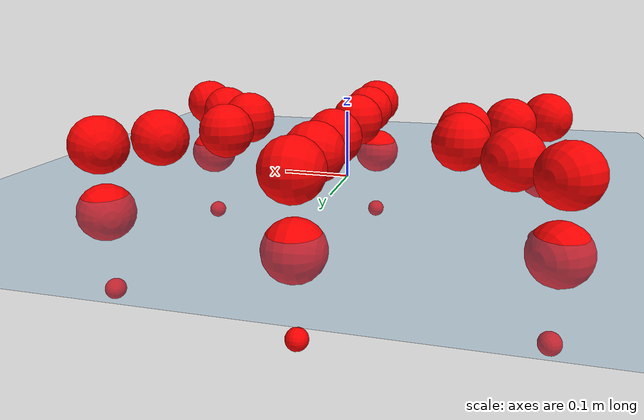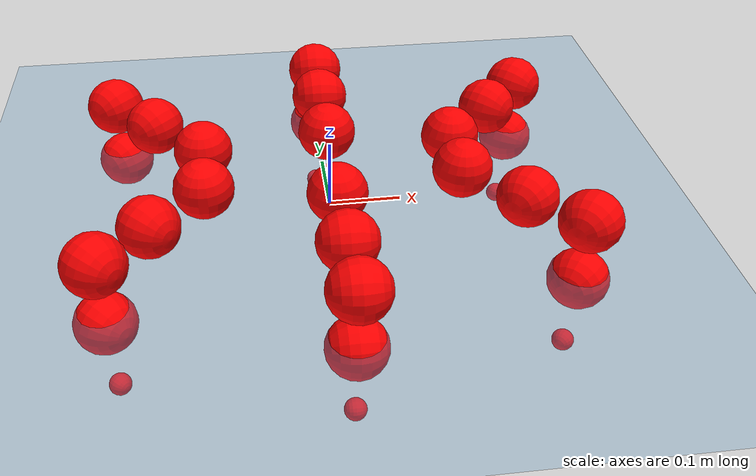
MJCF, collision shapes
<mujoco model="Golem">
  <compiler angle="radian" assetdir="assets" balanceinertia="true" inertiafromgeom="false"/>

  <option timestep="0.005" density="1.2" viscosity="2e-05"/>

  <size nkey="1"/>

  <visual>
    <quality shadowsize="8192"/>
    <map shadowclip="0.5"/>
  </visual>

  <default>
    <default class="/">
      <joint armature="0.01" damping="0.01" frictionloss="0.01"/>
      <geom contype="0" conaffinity="0" group="1" solref="-1000 -80"/>
      <site size="0.01 0.005 0.005" group="5"/>
      <general forcelimited="true" biastype="affine" gainprm="25" biasprm="0 -25 -0.5"/>
      <default class="visual">
        <geom type="mesh" group="2"/>
      </default>
      <default class="collision">
        <geom group="3"/>
      </default>
      <default class="foot">
        <geom size="0.01 0 0" condim="6" group="4" priority="1" solimp="0.015 1 0.01"/>
      </default>
      <default class="reward_collision_sphere">
        <geom group="5" rgba="1 0 0 1"/>
      </default>
    </default>
  </default>

  <asset>
    <texture type="skybox" colorspace="auto" name="//unnamed_texture_0" builtin="gradient" rgb1="0.95 0.95 0.95" rgb2="0.95 0.95 0.95" width="100" height="600"/>
    <texture type="2d" colorspace="auto" name="texplane" builtin="checker" rgb1="0.345 0.575 0.748" rgb2="0.345 0.575 0.748" markrgb="1 1 1" width="512" height="512"/>
    <material name="MatPlane" class="/" texture="texplane" texuniform="true" texrepeat="2 2" specular="0.9"/>
    <mesh name="body" class="/" file="body.stl" scale="0.001 0.001 0.001"/>
    <mesh name="coxa" class="/" file="coxa.stl" scale="0.001 0.001 0.001"/>
    <mesh name="femur" class="/" file="femur.stl" scale="0.001 0.001 0.001"/>
    <mesh name="tibia" class="/" file="tibia.stl" scale="0.001 0.001 0.001"/>
    <mesh name="tarsus" class="/" file="tarsus.stl" scale="0.001 0.001 0.001"/>
  </asset>

  <worldbody>
    <geom name="floor" class="/" size="100 100 0.125" type="plane" group="0" material="MatPlane"/>
    <light name="toplight_shadow" class="/" pos="0 0 5" dir="0.0990148 0.0990148 -0.990148" type="directional" ambient="0.04 0.04 0.04" diffuse="0.55 0.55 0.55" specular="0.12 0.12 0.12"/>
    <light name="toplight_fill" class="/" pos="0 0 5" dir="0.0990148 0.0990148 -0.990148" type="directional" castshadow="false" ambient="0.04 0.04 0.04" diffuse="0.3 0.3 0.3" specular="0.08 0.08 0.08"/>
    <body name="trunk" pos="0.00226301 0.000116343 -0.000223767" quat="1 1.22339e-05 5.11928e-05 -2.53164e-05">
      <inertial pos="-0.000473312 -0.000534704 -0.00234381" quat="1 -0.000317198 0.000377708 0.000148482" mass="3.82541" diaginertia="0.0160704 0.0030392 0.0207916"/>
      <joint name="//unnamed_joint_0" type="free"/>
      <geom name="//unnamed_geom_1" class="/" pos="0 0 0.0741603" quat="1 0 0 0" type="mesh" rgba="0.9 0.9 0.9 1" mesh="body"/>
      <site name="imu" class="/" pos="0.153742 0.00938069 0.110821" size="0.0101877"/>
      <camera name="track" class="/" pos="0 -1.58572 0" quat="0.707107 0.707107 0 0" mode="trackcom"/>
      <camera name="ego_camera" class="/" pos="0.143612 0 0.115876" quat="-0.5 -0.5 0.5 0.5"/>
      <body name="coxa_RR" pos="-0.197819 -0.0655438 0.0733548" quat="0.382663 2.57943e-05 -5.60452e-05 -0.923888">
        <inertial pos="0.00031758 -0.0023508 0.00134278" quat="0.999991 0.000709411 0.00282026 0.00317476" mass="0.20401" diaginertia="0.0162086 0.00308201 0.0204725"/>
        <joint name="coxa_joint_RR" class="/" pos="0 0 0" axis="-0.00608217 0.00297051 -0.999977" range="-3.14268 3.13682" armature="0.00942077" damping="0" frictionloss="0.0101663"/>
        <geom name="//unnamed_geom_2" class="/" type="mesh" rgba="0.2 0.2 0.2 1" mesh="coxa"/>
        <geom name="//unnamed_geom_3" class="reward_collision_sphere" size="0.040751" pos="-0.0331412 0 0"/>
        <body name="femur_RR" pos="0.0637276 0.000488203 -0.00151583" quat="0.500131 -0.499837 0.499936 0.500096">
          <inertial pos="0.000540513 0.000854877 9.73487e-05" quat="0.999987 0.00116587 -0.00131657 0.00482514" mass="0.210547" diaginertia="0.0164178 0.00308281 0.0214652"/>
          <joint name="femur_joint_RR" class="/" pos="0 0 0" axis="0.00456799 0.0038864 -0.999982" range="-3.17618 3.12304" armature="0.0106449" damping="0.00296285" frictionloss="0.0110053"/>
          <geom name="//unnamed_geom_4" class="/" type="mesh" rgba="0.9 0.9 0.9 1" mesh="femur"/>
          <geom name="//unnamed_geom_5" class="reward_collision_sphere" size="0.040751"/>
          <body name="tibia_RR" pos="-0.00115713 -0.0885464 0.00275342" quat="-0.000899693 0.999999 -0.000359414 -0.000494833">
            <inertial pos="-0.00179538 0.000804993 -0.000294667" quat="1 -2.99562e-05 -4.91069e-05 4.45113e-05" mass="0.214452" diaginertia="0.0163228 0.00316382 0.0207598"/>
            <joint name="tibia_joint_RR" class="/" pos="0 0 0" axis="-0.00152709 -0.0071543 0.999973" range="-3.15377 3.1438" armature="0.0102755" damping="0.00272085" frictionloss="0.010171"/>
            <geom name="//unnamed_geom_6" class="/" type="mesh" rgba="0.2 0.2 0.2 1" mesh="tibia"/>
            <geom name="//unnamed_geom_7" class="reward_collision_sphere" size="0.040751"/>
            <body name="tarsus_RR" pos="0.0981824 0.00129794 0.00148318" quat="1 -7.4152e-05 -1.58749e-05 8.55243e-08">
              <inertial pos="0.0691238 0.000740265 -0.000626017" quat="0.499999 0.496904 0.499982 0.503096" mass="0.20949" diaginertia="0.0162075 0.00309819 0.0206864"/>
              <joint name="tarsus_joint_RR" class="/" pos="0 0 0" axis="-6.7983e-05 -0.00203065 0.999998" range="-3.1742 3.14775" armature="0.0106668" damping="0.0386325" frictionloss="0.0104613"/>
              <geom name="//unnamed_geom_8" class="/" type="mesh" rgba="0.9 0.9 0.9 1" mesh="tarsus"/>
              <geom name="foot_1" class="foot" size="0.01008" pos="0.123727 0 0" quat="0 -0.707107 0 0.707107"/>
              <geom name="//unnamed_geom_10" class="reward_collision_sphere" size="0.040751"/>
              <geom name="//unnamed_geom_11" class="reward_collision_sphere" size="0.0152816" pos="0.118756 0 0"/>
              <site name="foot_1" class="foot" pos="0.123727 0 0" quat="0 -0.707107 0 0.707107" size="0.0101877"/>
            </body>
          </body>
        </body>
      </body>
      <body name="coxa_RM" pos="-0.000811628 -0.106604 0.074928" quat="0.707202 0.000122484 -9.86947e-05 -0.707012">
        <inertial pos="0.0011477 0.000141615 0.0013107" quat="0.999994 0.000356858 -0.000197199 0.00331808" mass="0.213092" diaginertia="0.0164815 0.00303601 0.0210154"/>
        <joint name="coxa_joint_RM" class="/" pos="0 0 0" axis="0.000241492 0.000402407 -1" range="-3.11935 3.13361" armature="0.0102854" damping="0.00389688" frictionloss="0.00890745"/>
        <geom name="//unnamed_geom_12" class="/" type="mesh" rgba="0.2 0.2 0.2 1" mesh="coxa"/>
        <geom name="//unnamed_geom_13" class="reward_collision_sphere" size="0.040751" pos="-0.0331412 0 0"/>
        <body name="femur_RM" pos="0.0638504 0.00103244 0.000844422" quat="0.500707 -0.499594 0.49938 0.500318">
          <inertial pos="-0.000757397 0.000647667 -3.71113e-05" quat="0.999987 -0.0041528 -0.00141002 0.00255605" mass="0.21698" diaginertia="0.0169422 0.00316736 0.0214382"/>
          <joint name="femur_joint_RM" class="/" pos="0 0 0" axis="-2.43159e-05 1.9887e-05 -1" range="-3.12889 3.13407" armature="0.0104829" damping="0.0139916" frictionloss="0.0102097"/>
          <geom name="//unnamed_geom_14" class="/" type="mesh" rgba="0.9 0.9 0.9 1" mesh="femur"/>
          <geom name="//unnamed_geom_15" class="reward_collision_sphere" size="0.040751"/>
          <body name="tibia_RM" pos="4.47138e-05 -0.0856798 0.00190139" quat="-6.02469e-05 1 7.8353e-06 -3.80013e-05">
            <inertial pos="0.000765442 -0.0025454 0.000201554" quat="0.999953 0.00216273 0.0090973 0.00257997" mass="0.209174" diaginertia="0.0167141 0.00326789 0.0211778"/>
            <joint name="tibia_joint_RM" class="/" pos="0 0 0" axis="-0.00269451 -0.00133289 0.999995" range="-3.17878 3.18911" armature="0.0101766" damping="0.0138608" frictionloss="0.00980804"/>
            <geom name="//unnamed_geom_16" class="/" type="mesh" rgba="0.2 0.2 0.2 1" mesh="tibia"/>
            <geom name="//unnamed_geom_17" class="reward_collision_sphere" size="0.040751"/>
            <body name="tarsus_RM" pos="0.096179 0.000376872 0.00104389" quat="1 3.08661e-05 4.14506e-05 0.000111633">
              <inertial pos="0.0653701 -7.23188e-05 0.00144323" quat="0.498283 0.504074 0.506297 0.491209" mass="0.218041" diaginertia="0.0161018 0.00313352 0.0205867"/>
              <joint name="tarsus_joint_RM" class="/" pos="0 0 0" axis="0.00131343 -0.00119451 0.999998" range="-3.13134 3.15758" armature="0.00980405" damping="0.0038545" frictionloss="0.0103513"/>
              <geom name="//unnamed_geom_18" class="/" type="mesh" rgba="0.9 0.9 0.9 1" mesh="tarsus"/>
              <geom name="foot_2" class="foot" size="0.00985136" pos="0.123727 0 0" quat="0 -0.707107 0 0.707107"/>
              <geom name="//unnamed_geom_20" class="reward_collision_sphere" size="0.040751"/>
              <geom name="//unnamed_geom_21" class="reward_collision_sphere" size="0.0152816" pos="0.118756 0 0"/>
              <site name="foot_2" class="foot" pos="0.123727 0 0" quat="0 -0.707107 0 0.707107" size="0.0101877"/>
            </body>
          </body>
        </body>
      </body>
      <body name="coxa_RF" pos="0.196806 -0.0636146 0.0766096" quat="0.923806 2.05239e-05 -3.72329e-05 -0.382861">
        <inertial pos="0.00107264 -0.000129041 0.000622585" quat="1 0.000176879 -0.000143138 -0.000718691" mass="0.211089" diaginertia="0.0164057 0.00309343 0.0211069"/>
        <joint name="coxa_joint_RF" class="/" pos="0 0 0" axis="0.00187542 0.00456198 -0.999988" range="-3.13426 3.12146" armature="0.0110345" damping="0.00827844" frictionloss="0.0104613"/>
        <geom name="//unnamed_geom_22" class="/" type="mesh" rgba="0.2 0.2 0.2 1" mesh="coxa"/>
        <geom name="//unnamed_geom_23" class="reward_collision_sphere" size="0.040751" pos="-0.0331412 0 0"/>
        <body name="femur_RF" pos="0.0654389 0.00101965 -0.0021519" quat="0.500298 -0.49989 0.500137 0.499675">
          <inertial pos="-0.000725127 -0.0006519 0.000422281" quat="0.999992 0.000718334 0.00370855 -0.00119343" mass="0.212634" diaginertia="0.0164511 0.00314628 0.0215927"/>
          <joint name="femur_joint_RF" class="/" pos="0 0 0" axis="0.00015084 0.000194167 -1" range="-3.18618 3.11735" armature="0.00922097" damping="0.0120341" frictionloss="0.0108383"/>
          <geom name="//unnamed_geom_24" class="/" type="mesh" rgba="0.9 0.9 0.9 1" mesh="femur"/>
          <geom name="//unnamed_geom_25" class="reward_collision_sphere" size="0.040751"/>
          <body name="tibia_RF" pos="-0.00192932 -0.0868815 0.00205079" quat="8.22116e-05 1 0.000126018 9.18342e-05">
            <inertial pos="-0.0022828 -0.00023497 0.000662109" quat="1 -5.74787e-06 -0.000509071 8.4456e-05" mass="0.215316" diaginertia="0.0162981 0.00312138 0.020859"/>
            <joint name="tibia_joint_RF" class="/" pos="0 0 0" axis="0.00411062 -0.00928813 0.999948" range="-3.12129 3.09096" armature="0.010643" damping="0.0139624" frictionloss="0.0101621"/>
            <geom name="//unnamed_geom_26" class="/" type="mesh" rgba="0.2 0.2 0.2 1" mesh="tibia"/>
            <geom name="//unnamed_geom_27" class="reward_collision_sphere" size="0.040751"/>
            <body name="tarsus_RF" pos="0.095788 0.00193436 0.00209177" quat="0.999999 0.0002083 0.00112795 -8.35234e-06">
              <inertial pos="0.0663396 -0.00048746 -0.000185069" quat="0.500877 0.500424 0.499544 0.499154" mass="0.210225" diaginertia="0.0163903 0.00315503 0.020911"/>
              <joint name="tarsus_joint_RF" class="/" pos="0 0 0" axis="0.00106059 -0.00515998 0.999986" range="-3.12146 3.15515" armature="0.0102748" damping="0.00289583" frictionloss="0.0103888"/>
              <geom name="//unnamed_geom_28" class="/" type="mesh" rgba="0.9 0.9 0.9 1" mesh="tarsus"/>
              <geom name="foot_3" class="foot" size="0.0105676" pos="0.123727 0 0" quat="0 -0.707107 0 0.707107"/>
              <geom name="//unnamed_geom_30" class="reward_collision_sphere" size="0.040751"/>
              <geom name="//unnamed_geom_31" class="reward_collision_sphere" size="0.0152816" pos="0.118756 0 0"/>
              <site name="foot_3" class="foot" pos="0.123727 0 0" quat="0 -0.707107 0 0.707107" size="0.0101877"/>
            </body>
          </body>
        </body>
      </body>
      <body name="coxa_LR" pos="-0.198409 0.0691176 0.0735042" quat="0.382599 4.45225e-05 8.72432e-05 0.923914">
        <inertial pos="-0.00196107 -0.000734108 -0.00172004" quat="0.99993 -0.00553323 0.0071266 -0.0076083" mass="0.212159" diaginertia="0.0166625 0.0032696 0.0208661"/>
        <joint name="coxa_joint_LR" class="/" pos="0 0 0" axis="-0.00532886 -0.0134505 -0.999895" range="-3.11952 3.14482" armature="0.0101567" damping="0.0192218" frictionloss="0.00946291"/>
        <geom name="//unnamed_geom_32" class="/" type="mesh" rgba="0.2 0.2 0.2 1" mesh="coxa"/>
        <geom name="//unnamed_geom_33" class="reward_collision_sphere" size="0.040751" pos="-0.0331412 0 0"/>
        <body name="femur_LR" pos="0.0677249 -0.00253848 -0.00254116" quat="0.499987 -0.500027 0.499848 0.500138">
          <inertial pos="0.00068956 0.000332457 -0.000601863" quat="1 4.60724e-05 -0.000591563 0.000203447" mass="0.211723" diaginertia="0.0163627 0.00318612 0.0207162"/>
          <joint name="femur_joint_LR" class="/" pos="0 0 0" axis="-0.00233523 -0.00102044 0.999997" range="-3.16025 3.12824" armature="0.00986879" damping="0.0124844" frictionloss="0.0089477"/>
          <geom name="//unnamed_geom_34" class="/" type="mesh" rgba="0.9 0.9 0.9 1" mesh="femur"/>
          <geom name="//unnamed_geom_35" class="reward_collision_sphere" size="0.040751"/>
          <body name="tibia_LR" pos="-0.000320862 -0.0855931 0.000536843" quat="0.000629685 0.999999 -1.56122e-06 0.000869421">
            <inertial pos="0.00010031 0.000646763 4.89113e-05" quat="1 0.000466357 -0.000145384 0.000481369" mass="0.207585" diaginertia="0.016452 0.00315462 0.0206899"/>
            <joint name="tibia_joint_LR" class="/" pos="0 0 0" axis="-0.00327725 -0.00105751 -0.999994" range="-3.13306 3.11142" armature="0.00993726" damping="0.0103466" frictionloss="0.0104682"/>
            <geom name="//unnamed_geom_36" class="/" type="mesh" rgba="0.2 0.2 0.2 1" mesh="tibia"/>
            <geom name="//unnamed_geom_37" class="reward_collision_sphere" size="0.040751"/>
            <body name="tarsus_LR" pos="0.0964796 -0.00086977 0.00240263" quat="0.999999 -0.000621867 -0.00100151 6.33596e-05">
              <inertial pos="0.0696034 0.000589313 -0.0022552" quat="0.499865 0.500318 0.500351 0.499465" mass="0.207634" diaginertia="0.0162205 0.00305462 0.020478"/>
              <joint name="tarsus_joint_LR" class="/" pos="0 0 0" axis="-0.00146336 -0.00541551 -0.999984" range="-3.17271 3.10562" armature="0.0104426" damping="0" frictionloss="0.00967058"/>
              <geom name="//unnamed_geom_38" class="/" type="mesh" rgba="0.9 0.9 0.9 1" mesh="tarsus"/>
              <geom name="foot_4" class="foot" size="0.0101544" pos="0.123727 0 0" quat="0.707107 0 -0.707107 0"/>
              <geom name="//unnamed_geom_40" class="reward_collision_sphere" size="0.040751"/>
              <geom name="//unnamed_geom_41" class="reward_collision_sphere" size="0.0152816" pos="0.118756 0 0"/>
              <site name="foot_4" class="foot" pos="0.123727 0 0" quat="0.707107 0 -0.707107 0" size="0.0101877"/>
            </body>
          </body>
        </body>
      </body>
      <body name="coxa_LM" pos="0.000925935 0.102833 0.0757298" quat="0.707089 -3.5119e-05 3.68833e-05 0.707124">
        <inertial pos="-0.000730339 0.000981049 0.0010846" quat="0.999997 0.000874097 -0.00209097 7.23189e-05" mass="0.214141" diaginertia="0.0166982 0.00318226 0.0211696"/>
        <joint name="coxa_joint_LM" class="/" pos="0 0 0" axis="0.000714582 -2.35468e-06 -1" range="-3.10639 3.14884" armature="0.00989991" damping="0.0034387" frictionloss="0.010895"/>
        <geom name="//unnamed_geom_42" class="/" type="mesh" rgba="0.2 0.2 0.2 1" mesh="coxa"/>
        <geom name="//unnamed_geom_43" class="reward_collision_sphere" size="0.040751" pos="-0.0331412 0 0"/>
        <body name="femur_LM" pos="0.0624925 0.000386091 0.000967968" quat="0.500119 -0.499879 0.49987 0.500133">
          <inertial pos="-0.000654819 -0.00186884 0.00246111" quat="0.999937 -0.00382049 -0.00970006 -0.00416833" mass="0.208988" diaginertia="0.0161935 0.00299882 0.0203922"/>
          <joint name="femur_joint_LM" class="/" pos="0 0 0" axis="-0.00206359 0.0051725 0.999984" range="-3.14029 3.1104" armature="0.0101943" damping="0.00570933" frictionloss="0.0102221"/>
          <geom name="//unnamed_geom_44" class="/" type="mesh" rgba="0.9 0.9 0.9 1" mesh="femur"/>
          <geom name="//unnamed_geom_45" class="reward_collision_sphere" size="0.040751"/>
          <body name="tibia_LM" pos="0.00088794 -0.0818474 -0.00126929" quat="-0.000291091 0.999999 -0.00127861 0.000165726">
            <inertial pos="-0.000550701 -0.00321183 -0.00102413" quat="0.999996 0.00138808 0.00039645 -0.00228806" mass="0.214298" diaginertia="0.0162552 0.00321313 0.0206402"/>
            <joint name="tibia_joint_LM" class="/" pos="0 0 0" axis="-0.00403756 -0.00185216 -0.99999" range="-3.14509 3.11918" armature="0.011118" damping="0" frictionloss="0.0103131"/>
            <geom name="//unnamed_geom_46" class="/" type="mesh" rgba="0.2 0.2 0.2 1" mesh="tibia"/>
            <geom name="//unnamed_geom_47" class="reward_collision_sphere" size="0.040751"/>
            <body name="tarsus_LM" pos="0.0992646 0.00028523 -0.000196892" quat="0.999999 0.00105386 0.000441159 0.000501679">
              <inertial pos="0.0657789 0.000550312 0.000279837" quat="0.499988 0.500031 0.499982 0.499999" mass="0.206726" diaginertia="0.016131 0.00306181 0.0205186"/>
              <joint name="tarsus_joint_LM" class="/" pos="0 0 0" axis="0.000772914 0.0012778 -0.999999" range="-3.09006 3.12239" armature="0.0111614" damping="0" frictionloss="0.00973407"/>
              <geom name="//unnamed_geom_48" class="/" type="mesh" rgba="0.9 0.9 0.9 1" mesh="tarsus"/>
              <geom name="foot_5" class="foot" size="0.00990031" pos="0.123727 0 0" quat="0.707107 0 -0.707107 0"/>
              <geom name="//unnamed_geom_50" class="reward_collision_sphere" size="0.040751"/>
              <geom name="//unnamed_geom_51" class="reward_collision_sphere" size="0.0152816" pos="0.118756 0 0"/>
              <site name="foot_5" class="foot" pos="0.123727 0 0" quat="0.707107 0 -0.707107 0" size="0.0101877"/>
            </body>
          </body>
        </body>
      </body>
      <body name="coxa_LF" pos="0.19895 0.068809 0.0717246" quat="0.92384 5.11265e-05 2.51439e-05 0.382778">
        <inertial pos="-0.0001104 0.000630566 0.00118781" quat="0.999993 0.00128692 -0.00340384 -0.00098836" mass="0.205319" diaginertia="0.016074 0.00302986 0.0202603"/>
        <joint name="coxa_joint_LF" class="/" pos="0 0 0" axis="-0.00472292 -6.69554e-05 -0.999989" range="-3.1252 3.1865" armature="0.011096" damping="0.00164126" frictionloss="0.00986958"/>
        <geom name="//unnamed_geom_52" class="/" type="mesh" rgba="0.2 0.2 0.2 1" mesh="coxa"/>
        <geom name="//unnamed_geom_53" class="reward_collision_sphere" size="0.040751" pos="-0.0331412 0 0"/>
        <body name="femur_LF" pos="0.0658802 -0.001513 0.000244604" quat="0.500733 -0.500218 0.499819 0.499229">
          <inertial pos="0.00235947 0.000354553 0.000456602" quat="0.999989 -0.00230311 -0.00298581 0.00272197" mass="0.215011" diaginertia="0.0166474 0.00318456 0.0210393"/>
          <joint name="femur_joint_LF" class="/" pos="0 0 0" axis="0.00268208 0.00101049 0.999996" range="-3.13306 3.12953" armature="0.011123" damping="0.0108432" frictionloss="0.0106293"/>
          <geom name="//unnamed_geom_54" class="/" type="mesh" rgba="0.9 0.9 0.9 1" mesh="femur"/>
          <geom name="//unnamed_geom_55" class="reward_collision_sphere" size="0.040751"/>
          <body name="tibia_LF" pos="0.000527935 -0.0839844 0.00151735" quat="0.000214658 1 -0.000318073 0.000114428">
            <inertial pos="6.40285e-05 0.00128562 -0.000770252" quat="0.999988 -0.000389144 0.0026454 -0.00413145" mass="0.213405" diaginertia="0.0166851 0.00315965 0.020975"/>
            <joint name="tibia_joint_LF" class="/" pos="0 0 0" axis="-0.00071528 0.00228509 -0.999997" range="-3.13842 3.14936" armature="0.0100252" damping="0" frictionloss="0.00998705"/>
            <geom name="//unnamed_geom_56" class="/" type="mesh" rgba="0.2 0.2 0.2 1" mesh="tibia"/>
            <geom name="//unnamed_geom_57" class="reward_collision_sphere" size="0.040751"/>
            <body name="tarsus_LF" pos="0.097129 0.000129734 -0.000527653" quat="0.999999 -0.000161076 0.00104029 0.000350654">
              <inertial pos="0.0678821 0.000928602 0.000579703" quat="0.500606 0.495942 0.501574 0.501855" mass="0.208311" diaginertia="0.0163627 0.00314924 0.0205219"/>
              <joint name="tarsus_joint_LF" class="/" pos="0 0 0" axis="0.0026413 0.00255622 -0.999993" stiffness="0.0293348" range="-3.16317 3.12685" armature="0.0101244" damping="0.0306442" frictionloss="0.00990881"/>
              <geom name="//unnamed_geom_58" class="/" type="mesh" rgba="0.9 0.9 0.9 1" mesh="tarsus"/>
              <geom name="foot_6" class="foot" size="0.0103804" pos="0.123727 0 0" quat="0.707107 0 -0.707107 0"/>
              <geom name="//unnamed_geom_60" class="reward_collision_sphere" size="0.040751"/>
              <geom name="//unnamed_geom_61" class="reward_collision_sphere" size="0.0152816" pos="0.118756 0 0"/>
              <site name="foot_6" class="foot" pos="0.123727 0 0" quat="0.707107 0 -0.707107 0" size="0.0101877"/>
            </body>
          </body>
        </body>
      </body>
    </body>
  </worldbody>

  <contact>
    <pair class="/" geom1="floor" geom2="foot_1" name="//unnamed_contact_0"/>
    <pair class="/" geom1="floor" geom2="foot_2" name="//unnamed_contact_1"/>
    <pair class="/" geom1="floor" geom2="foot_3" name="//unnamed_contact_2"/>
    <pair class="/" geom1="floor" geom2="foot_4" name="//unnamed_contact_3"/>
    <pair class="/" geom1="floor" geom2="foot_5" name="//unnamed_contact_4"/>
    <pair class="/" geom1="floor" geom2="foot_6" name="//unnamed_contact_5"/>
  </contact>

  <actuator>
    <general name="coxa_joint_RR" class="/" joint="coxa_joint_RR" forcerange="-7.56283 7.56283" gainprm="24.4824" biasprm="0 -24.4824 -0.545621"/>
    <general name="femur_joint_RR" class="/" joint="femur_joint_RR" forcerange="-7.45693 7.45693" gainprm="24.4824" biasprm="0 -24.4824 -0.545621"/>
    <general name="tibia_joint_RR" class="/" joint="tibia_joint_RR" forcerange="-7.38484 7.38484" gainprm="24.4824" biasprm="0 -24.4824 -0.545621"/>
    <general name="tarsus_joint_RR" class="/" joint="tarsus_joint_RR" forcerange="-7.76707 7.76707" gainprm="24.4824" biasprm="0 -24.4824 -0.545621"/>
    <general name="coxa_joint_RM" class="/" joint="coxa_joint_RM" forcerange="-6.7793 6.7793" gainprm="24.4824" biasprm="0 -24.4824 -0.545621"/>
    <general name="femur_joint_RM" class="/" joint="femur_joint_RM" forcerange="-7.58363 7.58363" gainprm="24.4824" biasprm="0 -24.4824 -0.545621"/>
    <general name="tibia_joint_RM" class="/" joint="tibia_joint_RM" forcerange="-7.36091 7.36091" gainprm="24.4824" biasprm="0 -24.4824 -0.545621"/>
    <general name="tarsus_joint_RM" class="/" joint="tarsus_joint_RM" forcerange="-7.57739 7.57739" gainprm="24.4824" biasprm="0 -24.4824 -0.545621"/>
    <general name="coxa_joint_RF" class="/" joint="coxa_joint_RF" forcerange="-6.83022 6.83022" gainprm="24.4824" biasprm="0 -24.4824 -0.545621"/>
    <general name="femur_joint_RF" class="/" joint="femur_joint_RF" forcerange="-7.4788 7.4788" gainprm="24.4824" biasprm="0 -24.4824 -0.545621"/>
    <general name="tibia_joint_RF" class="/" joint="tibia_joint_RF" forcerange="-6.75749 6.75749" gainprm="24.4824" biasprm="0 -24.4824 -0.545621"/>
    <general name="tarsus_joint_RF" class="/" joint="tarsus_joint_RF" forcerange="-7.34496 7.34496" gainprm="24.4824" biasprm="0 -24.4824 -0.545621"/>
    <general name="coxa_joint_LR" class="/" joint="coxa_joint_LR" forcerange="-7.43057 7.43057" gainprm="24.4824" biasprm="0 -24.4824 -0.545621"/>
    <general name="femur_joint_LR" class="/" joint="femur_joint_LR" forcerange="-7.53262 7.53262" gainprm="24.4824" biasprm="0 -24.4824 -0.545621"/>
    <general name="tibia_joint_LR" class="/" joint="tibia_joint_LR" forcerange="-7.34625 7.34625" gainprm="24.4824" biasprm="0 -24.4824 -0.545621"/>
    <general name="tarsus_joint_LR" class="/" joint="tarsus_joint_LR" forcerange="-7.15949 7.15949" gainprm="24.4824" biasprm="0 -24.4824 -0.545621"/>
    <general name="coxa_joint_LM" class="/" joint="coxa_joint_LM" forcerange="-7.87477 7.87477" gainprm="24.4824" biasprm="0 -24.4824 -0.545621"/>
    <general name="femur_joint_LM" class="/" joint="femur_joint_LM" forcerange="-7.43859 7.43859" gainprm="24.4824" biasprm="0 -24.4824 -0.545621"/>
    <general name="tibia_joint_LM" class="/" joint="tibia_joint_LM" forcerange="-7.29163 7.29163" gainprm="24.4824" biasprm="0 -24.4824 -0.545621"/>
    <general name="tarsus_joint_LM" class="/" joint="tarsus_joint_LM" forcerange="-7.54642 7.54642" gainprm="24.4824" biasprm="0 -24.4824 -0.545621"/>
    <general name="coxa_joint_LF" class="/" joint="coxa_joint_LF" forcerange="-6.74621 6.74621" gainprm="24.4824" biasprm="0 -24.4824 -0.545621"/>
    <general name="femur_joint_LF" class="/" joint="femur_joint_LF" forcerange="-7.38382 7.38382" gainprm="24.4824" biasprm="0 -24.4824 -0.545621"/>
    <general name="tibia_joint_LF" class="/" joint="tibia_joint_LF" forcerange="-7.24369 7.24369" gainprm="24.4824" biasprm="0 -24.4824 -0.545621"/>
    <general name="tarsus_joint_LF" class="/" joint="tarsus_joint_LF" forcerange="-7.46704 7.46704" gainprm="24.4824" biasprm="0 -24.4824 -0.545621"/>
  </actuator>

  <sensor>
    <gyro site="imu" name="imu_angular_velocity"/>
    <velocimeter site="imu" name="imu_linear_velocity"/>
    <framelinvel objtype="site" objname="foot_1" name="foot_1_global_linear_velocity"/>
    <framelinvel objtype="site" objname="foot_2" name="foot_2_global_linear_velocity"/>
    <framelinvel objtype="site" objname="foot_3" name="foot_3_global_linear_velocity"/>
    <framelinvel objtype="site" objname="foot_4" name="foot_4_global_linear_velocity"/>
    <framelinvel objtype="site" objname="foot_5" name="foot_5_global_linear_velocity"/>
    <framelinvel objtype="site" objname="foot_6" name="foot_6_global_linear_velocity"/>
  </sensor>

  <keyframe>
    <key name="home" qpos="0 0 0.1457 1 0 0 0 0 0 0 0 0 0 0 0 0 0 0 0 0 0 0 0 0 0 0 0 0 0 0 0"/>
  </keyframe>
</mujoco>
